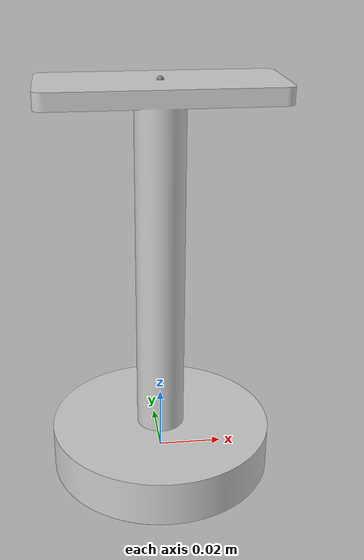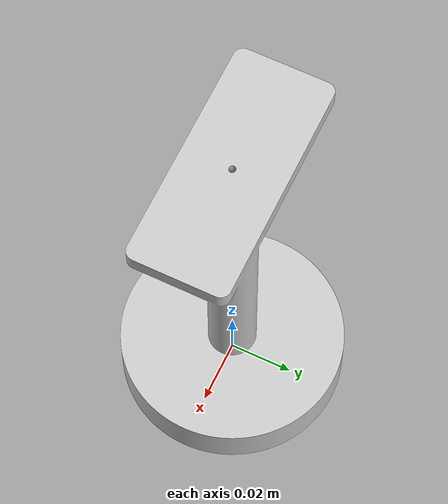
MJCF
<mujoco>
  <asset>
    <mesh name="endeffector" file="pusher.obj" />
  </asset>
  <worldbody>
    <body>
      <geom type="mesh" mesh="endeffector" mass=".044" solref="0.002 0.7" solimp="0.95 0.995 0.001" condim="4" rgba=".8 .8 .8 1" />
      <site name="TCP" pos="0 0 0.12" size="0.001" />
    </body>
  </worldbody>
</mujoco>
